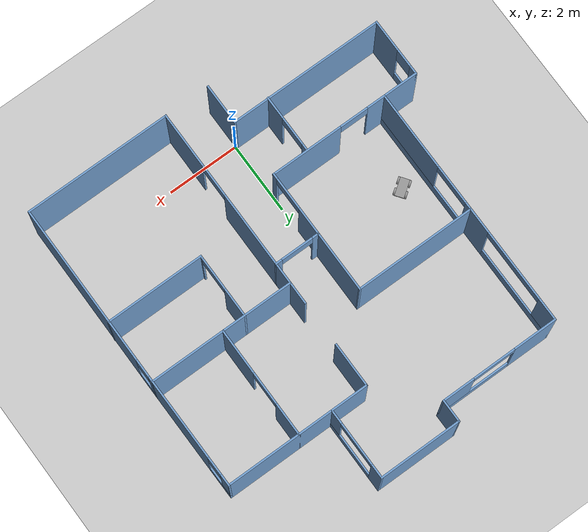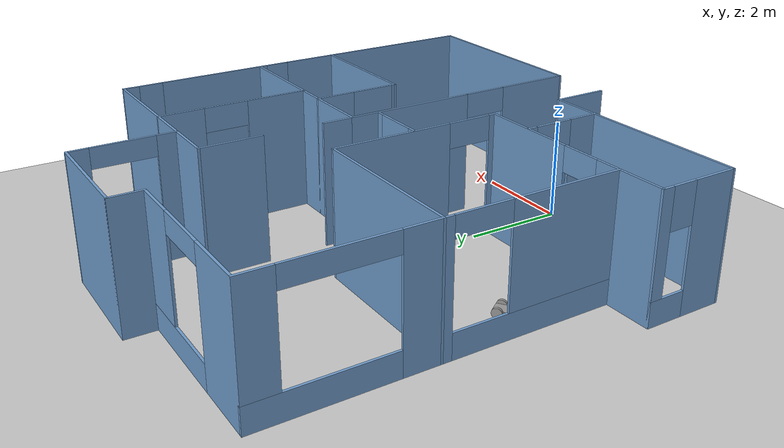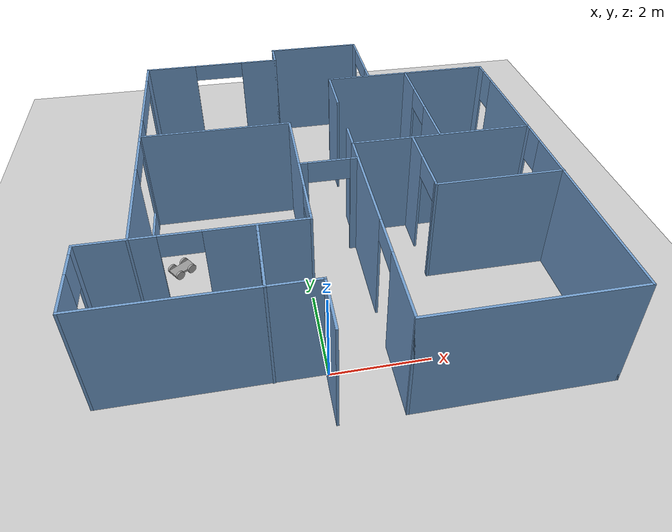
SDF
<sdf version="1.6">
 <world name="default">
  <model name="ground_plane">
   <static>1</static>
   <link name="link">
    <collision name="collision">
     <geometry><plane><normal>0 0 1</normal><size>100 100</size></plane></geometry>
     <surface>
      <contact><collide_bitmask>65535</collide_bitmask></contact>
      <friction><ode><mu>100</mu><mu2>50</mu2></ode></friction>
     </surface>
    </collision>
    <visual name="visual">
     <cast_shadows>0</cast_shadows>
     <geometry><plane><normal>0 0 1</normal><size>100 100</size></plane></geometry>
     <material>
      <script><uri>file://media/materials/scripts/gazebo.material</uri><name>Gazebo/Grey</name></script>
     </material>
    </visual>
   </link>
  </model>
  <model name="T8_1160">
   <pose>0.49359 3.97815 0 0 -0 0</pose>
   <link name="Wall_0">
    <collision name="Wall_0_Collision">
     <geometry><box><size>4.31 0.05 2.5</size></box></geometry>
     <pose>0 0 1.25 0 -0 0</pose>
    </collision>
    <visual name="Wall_0_Visual">
     <pose>0 0 1.25 0 -0 0</pose>
     <geometry><box><size>4.31 0.05 2.5</size></box></geometry>
     <material>
      <script><uri>file://media/materials/scripts/gazebo.material</uri><name>Gazebo/Grey</name></script>
      <ambient>0.447059 0.623529 0.811765 1</ambient>
     </material>
     <meta><layer>0</layer></meta>
    </visual>
    <pose>-2.645 -3.94713 0 0 -0 3.14159</pose>
   </link>
   <link name="Wall_11">
    <collision name="Wall_11_Collision">
     <geometry><box><size>3.35552 0.05 2.5</size></box></geometry>
     <pose>0 0 1.25 0 -0 0</pose>
    </collision>
    <visual name="Wall_11_Visual">
     <pose>0 0 1.25 0 -0 0</pose>
     <geometry><box><size>3.35552 0.05 2.5</size></box></geometry>
     <material>
      <script><uri>file://media/materials/scripts/gazebo.material</uri><name>Gazebo/Grey</name></script>
      <ambient>0.447059 0.623529 0.811765 1</ambient>
     </material>
     <meta><layer>0</layer></meta>
    </visual>
    <pose>-2.1675 1.12987 0 0 -0 3.14159</pose>
   </link>
   <link name="Wall_14">
    <pose>-3.82 -0.608633 0 0 -0 -1.5708</pose>
    <visual name="Wall_14_Visual_0">
     <pose>-1.65666 0 1.25 0 -0 0</pose>
     <geometry><box><size>0.213672 0.05 2.5</size></box></geometry>
     <material>
      <script><uri>file://media/materials/scripts/gazebo.material</uri><name>Gazebo/Grey</name></script>
      <ambient>0.447059 0.623529 0.811765 1</ambient>
     </material>
     <meta><layer>0</layer></meta>
    </visual>
    <collision name="Wall_14_Collision_0">
     <geometry><box><size>0.213672 0.05 2.5</size></box></geometry>
     <pose>-1.65666 0 1.25 0 -0 0</pose>
    </collision>
    <visual name="Wall_14_Visual_1">
     <pose>0.106836 0 0.25 0 -0 0</pose>
     <geometry><box><size>3.31333 0.05 0.5</size></box></geometry>
     <material>
      <script><uri>file://media/materials/scripts/gazebo.material</uri><name>Gazebo/Grey</name></script>
      <ambient>0.447059 0.623529 0.811765 1</ambient>
     </material>
     <meta><layer>0</layer></meta>
    </visual>
    <collision name="Wall_14_Collision_1">
     <geometry><box><size>3.31333 0.05 0.5</size></box></geometry>
     <pose>0.106836 0 0.25 0 -0 0</pose>
    </collision>
    <visual name="Wall_14_Visual_2">
     <pose>0.656836 0 1.5 0 -0 0</pose>
     <geometry><box><size>2.21333 0.05 2</size></box></geometry>
     <material>
      <script><uri>file://media/materials/scripts/gazebo.material</uri><name>Gazebo/Grey</name></script>
      <ambient>0.447059 0.623529 0.811765 1</ambient>
     </material>
     <meta><layer>0</layer></meta>
    </visual>
    <collision name="Wall_14_Collision_2">
     <geometry><box><size>2.21333 0.05 2</size></box></geometry>
     <pose>0.656836 0 1.5 0 -0 0</pose>
    </collision>
    <visual name="Wall_14_Visual_3">
     <pose>-0.999828 0 2.3 0 -0 0</pose>
     <geometry><box><size>1.1 0.05 0.4</size></box></geometry>
     <material>
      <script><uri>file://media/materials/scripts/gazebo.material</uri><name>Gazebo/Grey</name></script>
      <ambient>0.447059 0.623529 0.811765 1</ambient>
     </material>
     <meta><layer>0</layer></meta>
    </visual>
    <collision name="Wall_14_Collision_3">
     <geometry><box><size>1.1 0.05 0.4</size></box></geometry>
     <pose>-0.999828 0 2.3 0 -0 0</pose>
    </collision>
   </link>
   <link name="Wall_16">
    <collision name="Wall_16_Collision">
     <geometry><box><size>1.15 0.05 2.5</size></box></geometry>
     <pose>0 0 1.25 0 -0 0</pose>
    </collision>
    <visual name="Wall_16_Visual">
     <pose>0 0 1.25 0 -0 0</pose>
     <geometry><box><size>1.15 0.05 2.5</size></box></geometry>
     <material>
      <script><uri>file://media/materials/scripts/gazebo.material</uri><name>Gazebo/Grey</name></script>
      <ambient>0.447059 0.623529 0.811765 1</ambient>
     </material>
     <meta><layer>0</layer></meta>
    </visual>
    <pose>-0.515 -4.49713 0 0 -0 -1.5708</pose>
   </link>
   <link name="Wall_18">
    <pose>0.735 -2.51163 0 0 -0 1.5708</pose>
    <visual name="Wall_18_Visual_0">
     <pose>-1.78983 0 1.25 0 -0 0</pose>
     <geometry><box><size>1.56134 0.05 2.5</size></box></geometry>
     <material>
      <script><uri>file://media/materials/scripts/gazebo.material</uri><name>Gazebo/Grey</name></script>
      <ambient>0.447059 0.623529 0.811765 1</ambient>
     </material>
     <meta><layer>0</layer></meta>
    </visual>
    <collision name="Wall_18_Collision_0">
     <geometry><box><size>1.56134 0.05 2.5</size></box></geometry>
     <pose>-1.78983 0 1.25 0 -0 0</pose>
    </collision>
    <visual name="Wall_18_Visual_1">
     <pose>1.23067 0 1.25 0 -0 0</pose>
     <geometry><box><size>2.67966 0.05 2.5</size></box></geometry>
     <material>
      <script><uri>file://media/materials/scripts/gazebo.material</uri><name>Gazebo/Grey</name></script>
      <ambient>0.447059 0.623529 0.811765 1</ambient>
     </material>
     <meta><layer>0</layer></meta>
    </visual>
    <collision name="Wall_18_Collision_1">
     <geometry><box><size>2.67966 0.05 2.5</size></box></geometry>
     <pose>1.23067 0 1.25 0 -0 0</pose>
    </collision>
    <visual name="Wall_18_Visual_2">
     <pose>-0.559159 0 2.25 0 -0 0</pose>
     <geometry><box><size>0.9 0.05 0.5</size></box></geometry>
     <material>
      <script><uri>file://media/materials/scripts/gazebo.material</uri><name>Gazebo/Grey</name></script>
      <ambient>0.447059 0.623529 0.811765 1</ambient>
     </material>
     <meta><layer>0</layer></meta>
    </visual>
    <collision name="Wall_18_Collision_2">
     <geometry><box><size>0.9 0.05 0.5</size></box></geometry>
     <pose>-0.559159 0 2.25 0 -0 0</pose>
    </collision>
   </link>
   <link name="Wall_2">
    <pose>-4.775 -3.14713 0 0 -0 1.5708</pose>
    <visual name="Wall_2_Visual_0">
     <pose>-0.375725 0 1.25 0 -0 0</pose>
     <geometry><box><size>0.89855 0.05 2.5</size></box></geometry>
     <material>
      <script><uri>file://media/materials/scripts/gazebo.material</uri><name>Gazebo/Grey</name></script>
      <ambient>0.447059 0.623529 0.811765 1</ambient>
     </material>
     <meta><layer>0</layer></meta>
    </visual>
    <collision name="Wall_2_Collision_0">
     <geometry><box><size>0.89855 0.05 2.5</size></box></geometry>
     <pose>-0.375725 0 1.25 0 -0 0</pose>
    </collision>
    <visual name="Wall_2_Visual_1">
     <pose>0.449275 0 0.25 0 -0 0</pose>
     <geometry><box><size>0.75145 0.05 0.5</size></box></geometry>
     <material>
      <script><uri>file://media/materials/scripts/gazebo.material</uri><name>Gazebo/Grey</name></script>
      <ambient>0.447059 0.623529 0.811765 1</ambient>
     </material>
     <meta><layer>0</layer></meta>
    </visual>
    <collision name="Wall_2_Collision_1">
     <geometry><box><size>0.75145 0.05 0.5</size></box></geometry>
     <pose>0.449275 0 0.25 0 -0 0</pose>
    </collision>
    <visual name="Wall_2_Visual_2">
     <pose>0.699275 0 1.5 0 -0 0</pose>
     <geometry><box><size>0.25145 0.05 2</size></box></geometry>
     <material>
      <script><uri>file://media/materials/scripts/gazebo.material</uri><name>Gazebo/Grey</name></script>
      <ambient>0.447059 0.623529 0.811765 1</ambient>
     </material>
     <meta><layer>0</layer></meta>
    </visual>
    <collision name="Wall_2_Collision_2">
     <geometry><box><size>0.25145 0.05 2</size></box></geometry>
     <pose>0.699275 0 1.5 0 -0 0</pose>
    </collision>
    <visual name="Wall_2_Visual_3">
     <pose>0.32355 0 2.1 0 -0 0</pose>
     <geometry><box><size>0.5 0.05 0.8</size></box></geometry>
     <material>
      <script><uri>file://media/materials/scripts/gazebo.material</uri><name>Gazebo/Grey</name></script>
      <ambient>0.447059 0.623529 0.811765 1</ambient>
     </material>
     <meta><layer>0</layer></meta>
    </visual>
    <collision name="Wall_2_Collision_3">
     <geometry><box><size>0.5 0.05 0.8</size></box></geometry>
     <pose>0.32355 0 2.1 0 -0 0</pose>
    </collision>
   </link>
   <link name="Wall_20">
    <collision name="Wall_20_Collision">
     <geometry><box><size>4.08 0.05 2.5</size></box></geometry>
     <pose>0 0 1.25 0 -0 0</pose>
    </collision>
    <visual name="Wall_20_Visual">
     <pose>0 0 1.25 0 -0 0</pose>
     <geometry><box><size>4.08 0.05 2.5</size></box></geometry>
     <material>
      <script><uri>file://media/materials/scripts/gazebo.material</uri><name>Gazebo/Grey</name></script>
      <ambient>0.447059 0.623529 0.811765 1</ambient>
     </material>
     <meta><layer>0</layer></meta>
    </visual>
    <pose>2.75 -5.05713 0 0 -0 0</pose>
   </link>
   <link name="Wall_22">
    <pose>4.765 -2.51163 0 0 -0 1.5708</pose>
    <visual name="Wall_22_Visual_0">
     <pose>-0.335589 0 1.25 0 -0 0</pose>
     <geometry><box><size>4.46982 0.05 2.5</size></box></geometry>
     <material>
      <script><uri>file://media/materials/scripts/gazebo.material</uri><name>Gazebo/Grey</name></script>
      <ambient>0.447059 0.623529 0.811765 1</ambient>
     </material>
     <meta><layer>0</layer></meta>
    </visual>
    <collision name="Wall_22_Collision_0">
     <geometry><box><size>4.46982 0.05 2.5</size></box></geometry>
     <pose>-0.335589 0 1.25 0 -0 0</pose>
    </collision>
    <visual name="Wall_22_Visual_1">
     <pose>2.23491 0 0.25 0 -0 0</pose>
     <geometry><box><size>0.671178 0.05 0.5</size></box></geometry>
     <material>
      <script><uri>file://media/materials/scripts/gazebo.material</uri><name>Gazebo/Grey</name></script>
      <ambient>0.447059 0.623529 0.811765 1</ambient>
     </material>
     <meta><layer>0</layer></meta>
    </visual>
    <collision name="Wall_22_Collision_1">
     <geometry><box><size>0.671178 0.05 0.5</size></box></geometry>
     <pose>2.23491 0 0.25 0 -0 0</pose>
    </collision>
    <visual name="Wall_22_Visual_2">
     <pose>2.48491 0 1.5 0 -0 0</pose>
     <geometry><box><size>0.171178 0.05 2</size></box></geometry>
     <material>
      <script><uri>file://media/materials/scripts/gazebo.material</uri><name>Gazebo/Grey</name></script>
      <ambient>0.447059 0.623529 0.811765 1</ambient>
     </material>
     <meta><layer>0</layer></meta>
    </visual>
    <collision name="Wall_22_Collision_2">
     <geometry><box><size>0.171178 0.05 2</size></box></geometry>
     <pose>2.48491 0 1.5 0 -0 0</pose>
    </collision>
    <visual name="Wall_22_Visual_3">
     <pose>2.14932 0 2.1 0 -0 0</pose>
     <geometry><box><size>0.5 0.05 0.8</size></box></geometry>
     <material>
      <script><uri>file://media/materials/scripts/gazebo.material</uri><name>Gazebo/Grey</name></script>
      <ambient>0.447059 0.623529 0.811765 1</ambient>
     </material>
     <meta><layer>0</layer></meta>
    </visual>
    <collision name="Wall_22_Collision_3">
     <geometry><box><size>0.5 0.05 0.8</size></box></geometry>
     <pose>2.14932 0 2.1 0 -0 0</pose>
    </collision>
   </link>
   <link name="Wall_24">
    <collision name="Wall_24_Collision">
     <geometry><box><size>4.08 0.05 2.5</size></box></geometry>
     <pose>0 0 1.25 0 -0 0</pose>
    </collision>
    <visual name="Wall_24_Visual">
     <pose>0 0 1.25 0 -0 0</pose>
     <geometry><box><size>4.08 0.05 2.5</size></box></geometry>
     <material>
      <script><uri>file://media/materials/scripts/gazebo.material</uri><name>Gazebo/Grey</name></script>
      <ambient>0.447059 0.623529 0.811765 1</ambient>
     </material>
     <meta><layer>0</layer></meta>
    </visual>
    <pose>2.75 0.033867 0 0 -0 0</pose>
   </link>
   <link name="Wall_27">
    <pose>0.1145 -0.539133 0 0 -0 0</pose>
    <visual name="Wall_27_Visual_0">
     <pose>-0.547154 0 1.25 0 -0 0</pose>
     <geometry><box><size>0.196693 0.05 2.5</size></box></geometry>
     <material>
      <script><uri>file://media/materials/scripts/gazebo.material</uri><name>Gazebo/Grey</name></script>
      <ambient>0.447059 0.623529 0.811765 1</ambient>
     </material>
     <meta><layer>0</layer></meta>
    </visual>
    <collision name="Wall_27_Collision_0">
     <geometry><box><size>0.196693 0.05 2.5</size></box></geometry>
     <pose>-0.547154 0 1.25 0 -0 0</pose>
    </collision>
    <visual name="Wall_27_Visual_1">
     <pose>0.548346 0 1.25 0 -0 0</pose>
     <geometry><box><size>0.194307 0.05 2.5</size></box></geometry>
     <material>
      <script><uri>file://media/materials/scripts/gazebo.material</uri><name>Gazebo/Grey</name></script>
      <ambient>0.447059 0.623529 0.811765 1</ambient>
     </material>
     <meta><layer>0</layer></meta>
    </visual>
    <collision name="Wall_27_Collision_1">
     <geometry><box><size>0.194307 0.05 2.5</size></box></geometry>
     <pose>0.548346 0 1.25 0 -0 0</pose>
    </collision>
    <visual name="Wall_27_Visual_2">
     <pose>0.001193 0 2.25 0 -0 0</pose>
     <geometry><box><size>0.9 0.05 0.5</size></box></geometry>
     <material>
      <script><uri>file://media/materials/scripts/gazebo.material</uri><name>Gazebo/Grey</name></script>
      <ambient>0.447059 0.623529 0.811765 1</ambient>
     </material>
     <meta><layer>0</layer></meta>
    </visual>
    <collision name="Wall_27_Collision_2">
     <geometry><box><size>0.9 0.05 0.5</size></box></geometry>
     <pose>0.001193 0 2.25 0 -0 0</pose>
    </collision>
   </link>
   <link name="Wall_29">
    <collision name="Wall_29_Collision">
     <geometry><box><size>0.65 0.05 2.5</size></box></geometry>
     <pose>0 0 1.25 0 -0 0</pose>
    </collision>
    <visual name="Wall_29_Visual">
     <pose>0 0 1.25 0 -0 0</pose>
     <geometry><box><size>0.65 0.05 2.5</size></box></geometry>
     <material>
      <script><uri>file://media/materials/scripts/gazebo.material</uri><name>Gazebo/Grey</name></script>
      <ambient>0.447059 0.623529 0.811765 1</ambient>
     </material>
     <meta><layer>0</layer></meta>
    </visual>
    <pose>0.735 0.333867 0 0 -0 1.5708</pose>
   </link>
   <link name="Wall_31">
    <collision name="Wall_31_Collision">
     <geometry><box><size>2.75 0.05 2.5</size></box></geometry>
     <pose>0 0 1.25 0 -0 0</pose>
    </collision>
    <visual name="Wall_31_Visual">
     <pose>0 0 1.25 0 -0 0</pose>
     <geometry><box><size>2.75 0.05 2.5</size></box></geometry>
     <material>
      <script><uri>file://media/materials/scripts/gazebo.material</uri><name>Gazebo/Grey</name></script>
      <ambient>0.447059 0.623529 0.811765 1</ambient>
     </material>
     <meta><layer>0</layer></meta>
    </visual>
    <pose>3.425 -1.74713 0 0 -0 3.14159</pose>
   </link>
   <link name="Wall_33">
    <pose>2.075 -0.856633 0 0 -0 1.5708</pose>
    <visual name="Wall_33_Visual_0">
     <pose>-0.861434 0 1.25 0 -0 0</pose>
     <geometry><box><size>0.108132 0.05 2.5</size></box></geometry>
     <material>
      <script><uri>file://media/materials/scripts/gazebo.material</uri><name>Gazebo/Grey</name></script>
      <ambient>0.447059 0.623529 0.811765 1</ambient>
     </material>
     <meta><layer>0</layer></meta>
    </visual>
    <collision name="Wall_33_Collision_0">
     <geometry><box><size>0.108132 0.05 2.5</size></box></geometry>
     <pose>-0.861434 0 1.25 0 -0 0</pose>
    </collision>
    <visual name="Wall_33_Visual_1">
     <pose>0.504066 0 1.25 0 -0 0</pose>
     <geometry><box><size>0.822868 0.05 2.5</size></box></geometry>
     <material>
      <script><uri>file://media/materials/scripts/gazebo.material</uri><name>Gazebo/Grey</name></script>
      <ambient>0.447059 0.623529 0.811765 1</ambient>
     </material>
     <meta><layer>0</layer></meta>
    </visual>
    <collision name="Wall_33_Collision_1">
     <geometry><box><size>0.822868 0.05 2.5</size></box></geometry>
     <pose>0.504066 0 1.25 0 -0 0</pose>
    </collision>
    <visual name="Wall_33_Visual_2">
     <pose>-0.357368 0 2.25 0 -0 0</pose>
     <geometry><box><size>0.9 0.05 0.5</size></box></geometry>
     <material>
      <script><uri>file://media/materials/scripts/gazebo.material</uri><name>Gazebo/Grey</name></script>
      <ambient>0.447059 0.623529 0.811765 1</ambient>
     </material>
     <meta><layer>0</layer></meta>
    </visual>
    <collision name="Wall_33_Collision_2">
     <geometry><box><size>0.9 0.05 0.5</size></box></geometry>
     <pose>-0.357368 0 2.25 0 -0 0</pose>
    </collision>
   </link>
   <link name="Wall_35">
    <pose>-3.82 2.79337 0 0 -0 1.5708</pose>
    <visual name="Wall_35_Visual_0">
     <pose>-1.32132 0 1.25 0 -0 0</pose>
     <geometry><box><size>0.734362 0.05 2.5</size></box></geometry>
     <material>
      <script><uri>file://media/materials/scripts/gazebo.material</uri><name>Gazebo/Grey</name></script>
      <ambient>0.447059 0.623529 0.811765 1</ambient>
     </material>
     <meta><layer>0</layer></meta>
    </visual>
    <collision name="Wall_35_Collision_0">
     <geometry><box><size>0.734362 0.05 2.5</size></box></geometry>
     <pose>-1.32132 0 1.25 0 -0 0</pose>
    </collision>
    <visual name="Wall_35_Visual_1">
     <pose>0.367181 0 0.25 0 -0 0</pose>
     <geometry><box><size>2.64264 0.05 0.5</size></box></geometry>
     <material>
      <script><uri>file://media/materials/scripts/gazebo.material</uri><name>Gazebo/Grey</name></script>
      <ambient>0.447059 0.623529 0.811765 1</ambient>
     </material>
     <meta><layer>0</layer></meta>
    </visual>
    <collision name="Wall_35_Collision_1">
     <geometry><box><size>2.64264 0.05 0.5</size></box></geometry>
     <pose>0.367181 0 0.25 0 -0 0</pose>
    </collision>
    <visual name="Wall_35_Visual_2">
     <pose>1.36718 0 1.5 0 -0 0</pose>
     <geometry><box><size>0.642638 0.05 2</size></box></geometry>
     <material>
      <script><uri>file://media/materials/scripts/gazebo.material</uri><name>Gazebo/Grey</name></script>
      <ambient>0.447059 0.623529 0.811765 1</ambient>
     </material>
     <meta><layer>0</layer></meta>
    </visual>
    <collision name="Wall_35_Collision_2">
     <geometry><box><size>0.642638 0.05 2</size></box></geometry>
     <pose>1.36718 0 1.5 0 -0 0</pose>
    </collision>
    <visual name="Wall_35_Visual_3">
     <pose>0.045862 0 2.3 0 -0 0</pose>
     <geometry><box><size>2 0.05 0.4</size></box></geometry>
     <material>
      <script><uri>file://media/materials/scripts/gazebo.material</uri><name>Gazebo/Grey</name></script>
      <ambient>0.447059 0.623529 0.811765 1</ambient>
     </material>
     <meta><layer>0</layer></meta>
    </visual>
    <collision name="Wall_35_Collision_3">
     <geometry><box><size>2 0.05 0.4</size></box></geometry>
     <pose>0.045862 0 2.3 0 -0 0</pose>
    </collision>
   </link>
   <link name="Wall_37">
    <pose>-2.1675 4.45687 0 0 -0 0</pose>
    <visual name="Wall_37_Visual_0">
     <pose>-1.06148 0 1.25 0 -0 0</pose>
     <geometry><box><size>1.23203 0.05 2.5</size></box></geometry>
     <material>
      <script><uri>file://media/materials/scripts/gazebo.material</uri><name>Gazebo/Grey</name></script>
      <ambient>0.447059 0.623529 0.811765 1</ambient>
     </material>
     <meta><layer>0</layer></meta>
    </visual>
    <collision name="Wall_37_Collision_0">
     <geometry><box><size>1.23203 0.05 2.5</size></box></geometry>
     <pose>-1.06148 0 1.25 0 -0 0</pose>
    </collision>
    <visual name="Wall_37_Visual_1">
     <pose>0.616016 0 0.25 0 -0 0</pose>
     <geometry><box><size>2.12297 0.05 0.5</size></box></geometry>
     <material>
      <script><uri>file://media/materials/scripts/gazebo.material</uri><name>Gazebo/Grey</name></script>
      <ambient>0.447059 0.623529 0.811765 1</ambient>
     </material>
     <meta><layer>0</layer></meta>
    </visual>
    <collision name="Wall_37_Collision_1">
     <geometry><box><size>2.12297 0.05 0.5</size></box></geometry>
     <pose>0.616016 0 0.25 0 -0 0</pose>
    </collision>
    <visual name="Wall_37_Visual_2">
     <pose>1.21602 0 1.5 0 -0 0</pose>
     <geometry><box><size>0.922968 0.05 2</size></box></geometry>
     <material>
      <script><uri>file://media/materials/scripts/gazebo.material</uri><name>Gazebo/Grey</name></script>
      <ambient>0.447059 0.623529 0.811765 1</ambient>
     </material>
     <meta><layer>0</layer></meta>
    </visual>
    <collision name="Wall_37_Collision_2">
     <geometry><box><size>0.922968 0.05 2</size></box></geometry>
     <pose>1.21602 0 1.5 0 -0 0</pose>
    </collision>
    <visual name="Wall_37_Visual_3">
     <pose>0.154532 0 2.3 0 -0 0</pose>
     <geometry><box><size>1.2 0.05 0.4</size></box></geometry>
     <material>
      <script><uri>file://media/materials/scripts/gazebo.material</uri><name>Gazebo/Grey</name></script>
      <ambient>0.447059 0.623529 0.811765 1</ambient>
     </material>
     <meta><layer>0</layer></meta>
    </visual>
    <collision name="Wall_37_Collision_3">
     <geometry><box><size>1.2 0.05 0.4</size></box></geometry>
     <pose>0.154532 0 2.3 0 -0 0</pose>
    </collision>
   </link>
   <link name="Wall_39">
    <pose>4.755 1.56037 0 0 -0 1.57735</pose>
    <visual name="Wall_39_Visual_0">
     <pose>-0.419155 0 1.25 0 -0 0</pose>
     <geometry><box><size>2.26536 0.05 2.5</size></box></geometry>
     <material>
      <script><uri>file://media/materials/scripts/gazebo.material</uri><name>Gazebo/Grey</name></script>
      <ambient>0.447059 0.623529 0.811765 1</ambient>
     </material>
     <meta><layer>0</layer></meta>
    </visual>
    <collision name="Wall_39_Collision_0">
     <geometry><box><size>2.26536 0.05 2.5</size></box></geometry>
     <pose>-0.419155 0 1.25 0 -0 0</pose>
    </collision>
    <visual name="Wall_39_Visual_1">
     <pose>1.13268 0 0.25 0 -0 0</pose>
     <geometry><box><size>0.838311 0.05 0.5</size></box></geometry>
     <material>
      <script><uri>file://media/materials/scripts/gazebo.material</uri><name>Gazebo/Grey</name></script>
      <ambient>0.447059 0.623529 0.811765 1</ambient>
     </material>
     <meta><layer>0</layer></meta>
    </visual>
    <collision name="Wall_39_Collision_1">
     <geometry><box><size>0.838311 0.05 0.5</size></box></geometry>
     <pose>1.13268 0 0.25 0 -0 0</pose>
    </collision>
    <visual name="Wall_39_Visual_2">
     <pose>1.38268 0 1.5 0 -0 0</pose>
     <geometry><box><size>0.338311 0.05 2</size></box></geometry>
     <material>
      <script><uri>file://media/materials/scripts/gazebo.material</uri><name>Gazebo/Grey</name></script>
      <ambient>0.447059 0.623529 0.811765 1</ambient>
     </material>
     <meta><layer>0</layer></meta>
    </visual>
    <collision name="Wall_39_Collision_2">
     <geometry><box><size>0.338311 0.05 2</size></box></geometry>
     <pose>1.38268 0 1.5 0 -0 0</pose>
    </collision>
    <visual name="Wall_39_Visual_3">
     <pose>0.963525 0 2.1 0 -0 0</pose>
     <geometry><box><size>0.5 0.05 0.8</size></box></geometry>
     <material>
      <script><uri>file://media/materials/scripts/gazebo.material</uri><name>Gazebo/Grey</name></script>
      <ambient>0.447059 0.623529 0.811765 1</ambient>
     </material>
     <meta><layer>0</layer></meta>
    </visual>
    <collision name="Wall_39_Collision_3">
     <geometry><box><size>0.5 0.05 0.8</size></box></geometry>
     <pose>0.963525 0 2.1 0 -0 0</pose>
    </collision>
   </link>
   <link name="Wall_4">
    <pose>-2.645 -2.34713 0 0 -0 0</pose>
    <visual name="Wall_4_Visual_0">
     <pose>-1.40931 0 1.25 0 -0 0</pose>
     <geometry><box><size>1.49138 0.05 2.5</size></box></geometry>
     <material>
      <script><uri>file://media/materials/scripts/gazebo.material</uri><name>Gazebo/Grey</name></script>
      <ambient>0.447059 0.623529 0.811765 1</ambient>
     </material>
     <meta><layer>0</layer></meta>
    </visual>
    <collision name="Wall_4_Collision_0">
     <geometry><box><size>1.49138 0.05 2.5</size></box></geometry>
     <pose>-1.40931 0 1.25 0 -0 0</pose>
    </collision>
    <visual name="Wall_4_Visual_1">
     <pose>1.14569 0 1.25 0 -0 0</pose>
     <geometry><box><size>2.01862 0.05 2.5</size></box></geometry>
     <material>
      <script><uri>file://media/materials/scripts/gazebo.material</uri><name>Gazebo/Grey</name></script>
      <ambient>0.447059 0.623529 0.811765 1</ambient>
     </material>
     <meta><layer>0</layer></meta>
    </visual>
    <collision name="Wall_4_Collision_1">
     <geometry><box><size>2.01862 0.05 2.5</size></box></geometry>
     <pose>1.14569 0 1.25 0 -0 0</pose>
    </collision>
    <visual name="Wall_4_Visual_2">
     <pose>-0.263615 0 2.25 0 -0 0</pose>
     <geometry><box><size>0.8 0.05 0.5</size></box></geometry>
     <material>
      <script><uri>file://media/materials/scripts/gazebo.material</uri><name>Gazebo/Grey</name></script>
      <ambient>0.447059 0.623529 0.811765 1</ambient>
     </material>
     <meta><layer>0</layer></meta>
    </visual>
    <collision name="Wall_4_Collision_2">
     <geometry><box><size>0.8 0.05 0.5</size></box></geometry>
     <pose>-0.263615 0 2.25 0 -0 0</pose>
    </collision>
   </link>
   <link name="Wall_41">
    <collision name="Wall_41_Collision">
     <geometry><box><size>4.06 0.05 2.5</size></box></geometry>
     <pose>0 0 1.25 0 -0 0</pose>
    </collision>
    <visual name="Wall_41_Visual">
     <pose>0 0 1.25 0 -0 0</pose>
     <geometry><box><size>4.06 0.05 2.5</size></box></geometry>
     <material>
      <script><uri>file://media/materials/scripts/gazebo.material</uri><name>Gazebo/Grey</name></script>
      <ambient>0.447059 0.623529 0.811765 1</ambient>
     </material>
     <meta><layer>0</layer></meta>
    </visual>
    <pose>2.74 3.08687 0 0 -0 3.14159</pose>
   </link>
   <link name="Wall_43">
    <collision name="Wall_43_Collision">
     <geometry><box><size>1.253 0.05 2.5</size></box></geometry>
     <pose>0 0 1.25 0 -0 0</pose>
    </collision>
    <visual name="Wall_43_Visual">
     <pose>0 0 1.25 0 -0 0</pose>
     <geometry><box><size>1.253 0.05 2.5</size></box></geometry>
     <material>
      <script><uri>file://media/materials/scripts/gazebo.material</uri><name>Gazebo/Grey</name></script>
      <ambient>0.447059 0.623529 0.811765 1</ambient>
     </material>
     <meta><layer>0</layer></meta>
    </visual>
    <pose>0.735 2.48537 0 0 -0 -1.5708</pose>
   </link>
   <link name="Wall_45">
    <pose>2.711 1.56037 0 0 -0 -1.5708</pose>
    <visual name="Wall_45_Visual_0">
     <pose>-1.0853 0 1.25 0 -0 0</pose>
     <geometry><box><size>0.9324 0.05 2.5</size></box></geometry>
     <material>
      <script><uri>file://media/materials/scripts/gazebo.material</uri><name>Gazebo/Grey</name></script>
      <ambient>0.447059 0.623529 0.811765 1</ambient>
     </material>
     <meta><layer>0</layer></meta>
    </visual>
    <collision name="Wall_45_Collision_0">
     <geometry><box><size>0.9324 0.05 2.5</size></box></geometry>
     <pose>-1.0853 0 1.25 0 -0 0</pose>
    </collision>
    <visual name="Wall_45_Visual_1">
     <pose>0.9162 0 1.25 0 -0 0</pose>
     <geometry><box><size>1.2706 0.05 2.5</size></box></geometry>
     <material>
      <script><uri>file://media/materials/scripts/gazebo.material</uri><name>Gazebo/Grey</name></script>
      <ambient>0.447059 0.623529 0.811765 1</ambient>
     </material>
     <meta><layer>0</layer></meta>
    </visual>
    <collision name="Wall_45_Collision_1">
     <geometry><box><size>1.2706 0.05 2.5</size></box></geometry>
     <pose>0.9162 0 1.25 0 -0 0</pose>
    </collision>
    <visual name="Wall_45_Visual_2">
     <pose>-0.1691 0 2.25 0 -0 0</pose>
     <geometry><box><size>0.9 0.05 0.5</size></box></geometry>
     <material>
      <script><uri>file://media/materials/scripts/gazebo.material</uri><name>Gazebo/Grey</name></script>
      <ambient>0.447059 0.623529 0.811765 1</ambient>
     </material>
     <meta><layer>0</layer></meta>
    </visual>
    <collision name="Wall_45_Collision_2">
     <geometry><box><size>0.9 0.05 0.5</size></box></geometry>
     <pose>-0.1691 0 2.25 0 -0 0</pose>
    </collision>
   </link>
   <link name="Wall_47">
    <collision name="Wall_47_Collision">
     <geometry><box><size>0.65 0.05 2.5</size></box></geometry>
     <pose>0 0 1.25 0 -0 0</pose>
    </collision>
    <visual name="Wall_47_Visual">
     <pose>0 0 1.25 0 -0 0</pose>
     <geometry><box><size>0.65 0.05 2.5</size></box></geometry>
     <material>
      <script><uri>file://media/materials/scripts/gazebo.material</uri><name>Gazebo/Grey</name></script>
      <ambient>0.447059 0.623529 0.811765 1</ambient>
     </material>
     <meta><layer>0</layer></meta>
    </visual>
    <pose>-0.515 4.75687 0 0 -0 1.5708</pose>
   </link>
   <link name="Wall_48">
    <collision name="Wall_48_Collision">
     <geometry><box><size>2.31494 0.05 2.5</size></box></geometry>
     <pose>0 0 1.25 0 -0 0</pose>
    </collision>
    <visual name="Wall_48_Visual">
     <pose>0 0 1.25 0 -0 0</pose>
     <geometry><box><size>2.31494 0.05 2.5</size></box></geometry>
     <material>
      <script><uri>file://media/materials/scripts/gazebo.material</uri><name>Gazebo/Grey</name></script>
      <ambient>0.447059 0.623529 0.811765 1</ambient>
     </material>
     <meta><layer>0</layer></meta>
    </visual>
    <pose>0.6175 5.05687 0 0 -0 0</pose>
   </link>
   <link name="Wall_49">
    <pose>1.75 4.07787 0 0 -0 -1.5708</pose>
    <visual name="Wall_49_Visual_0">
     <pose>-0.800206 0 1.25 0 -0 0</pose>
     <geometry><box><size>0.408123 0.05 2.5</size></box></geometry>
     <material>
      <script><uri>file://media/materials/scripts/gazebo.material</uri><name>Gazebo/Grey</name></script>
      <ambient>0.447059 0.623529 0.811765 1</ambient>
     </material>
     <meta><layer>0</layer></meta>
    </visual>
    <collision name="Wall_49_Collision_0">
     <geometry><box><size>0.408123 0.05 2.5</size></box></geometry>
     <pose>-0.800206 0 1.25 0 -0 0</pose>
    </collision>
    <visual name="Wall_49_Visual_1">
     <pose>0.204061 0 0.25 0 -0 0</pose>
     <geometry><box><size>1.60041 0.05 0.5</size></box></geometry>
     <material>
      <script><uri>file://media/materials/scripts/gazebo.material</uri><name>Gazebo/Grey</name></script>
      <ambient>0.447059 0.623529 0.811765 1</ambient>
     </material>
     <meta><layer>0</layer></meta>
    </visual>
    <collision name="Wall_49_Collision_1">
     <geometry><box><size>1.60041 0.05 0.5</size></box></geometry>
     <pose>0.204061 0 0.25 0 -0 0</pose>
    </collision>
    <visual name="Wall_49_Visual_2">
     <pose>0.804061 0 1.5 0 -0 0</pose>
     <geometry><box><size>0.400411 0.05 2</size></box></geometry>
     <material>
      <script><uri>file://media/materials/scripts/gazebo.material</uri><name>Gazebo/Grey</name></script>
      <ambient>0.447059 0.623529 0.811765 1</ambient>
     </material>
     <meta><layer>0</layer></meta>
    </visual>
    <collision name="Wall_49_Collision_2">
     <geometry><box><size>0.400411 0.05 2</size></box></geometry>
     <pose>0.804061 0 1.5 0 -0 0</pose>
    </collision>
    <visual name="Wall_49_Visual_3">
     <pose>0.003856 0 2.3 0 -0 0</pose>
     <geometry><box><size>1.2 0.05 0.4</size></box></geometry>
     <material>
      <script><uri>file://media/materials/scripts/gazebo.material</uri><name>Gazebo/Grey</name></script>
      <ambient>0.447059 0.623529 0.811765 1</ambient>
     </material>
     <meta><layer>0</layer></meta>
    </visual>
    <collision name="Wall_49_Collision_3">
     <geometry><box><size>1.2 0.05 0.4</size></box></geometry>
     <pose>0.003856 0 2.3 0 -0 0</pose>
    </collision>
   </link>
   <link name="Wall_7">
    <pose>-1.515 -3.16113 0 0 -0 -1.5708</pose>
    <visual name="Wall_7_Visual_0">
     <pose>-0.720934 0 1.25 0 -0 0</pose>
     <geometry><box><size>0.208131 0.05 2.5</size></box></geometry>
     <material>
      <script><uri>file://media/materials/scripts/gazebo.material</uri><name>Gazebo/Grey</name></script>
      <ambient>0.447059 0.623529 0.811765 1</ambient>
     </material>
     <meta><layer>0</layer></meta>
    </visual>
    <collision name="Wall_7_Collision_0">
     <geometry><box><size>0.208131 0.05 2.5</size></box></geometry>
     <pose>-0.720934 0 1.25 0 -0 0</pose>
    </collision>
    <visual name="Wall_7_Visual_1">
     <pose>0.504066 0 1.25 0 -0 0</pose>
     <geometry><box><size>0.641869 0.05 2.5</size></box></geometry>
     <material>
      <script><uri>file://media/materials/scripts/gazebo.material</uri><name>Gazebo/Grey</name></script>
      <ambient>0.447059 0.623529 0.811765 1</ambient>
     </material>
     <meta><layer>0</layer></meta>
    </visual>
    <collision name="Wall_7_Collision_1">
     <geometry><box><size>0.641869 0.05 2.5</size></box></geometry>
     <pose>0.504066 0 1.25 0 -0 0</pose>
    </collision>
    <visual name="Wall_7_Visual_2">
     <pose>-0.216869 0 2.25 0 -0 0</pose>
     <geometry><box><size>0.8 0.05 0.5</size></box></geometry>
     <material>
      <script><uri>file://media/materials/scripts/gazebo.material</uri><name>Gazebo/Grey</name></script>
      <ambient>0.447059 0.623529 0.811765 1</ambient>
     </material>
     <meta><layer>0</layer></meta>
    </visual>
    <collision name="Wall_7_Collision_2">
     <geometry><box><size>0.8 0.05 0.5</size></box></geometry>
     <pose>-0.216869 0 2.25 0 -0 0</pose>
    </collision>
   </link>
   <link name="Wall_9">
    <pose>-0.515 -0.608633 0 0 -0 1.5708</pose>
    <visual name="Wall_9_Visual_0">
     <pose>-1.68098 0 1.25 0 -0 0</pose>
     <geometry><box><size>0.165039 0.05 2.5</size></box></geometry>
     <material>
      <script><uri>file://media/materials/scripts/gazebo.material</uri><name>Gazebo/Grey</name></script>
      <ambient>0.447059 0.623529 0.811765 1</ambient>
     </material>
     <meta><layer>0</layer></meta>
    </visual>
    <collision name="Wall_9_Collision_0">
     <geometry><box><size>0.165039 0.05 2.5</size></box></geometry>
     <pose>-1.68098 0 1.25 0 -0 0</pose>
    </collision>
    <visual name="Wall_9_Visual_1">
     <pose>0.532519 0 1.25 0 -0 0</pose>
     <geometry><box><size>2.46196 0.05 2.5</size></box></geometry>
     <material>
      <script><uri>file://media/materials/scripts/gazebo.material</uri><name>Gazebo/Grey</name></script>
      <ambient>0.447059 0.623529 0.811765 1</ambient>
     </material>
     <meta><layer>0</layer></meta>
    </visual>
    <collision name="Wall_9_Collision_1">
     <geometry><box><size>2.46196 0.05 2.5</size></box></geometry>
     <pose>0.532519 0 1.25 0 -0 0</pose>
    </collision>
    <visual name="Wall_9_Visual_2">
     <pose>-1.14846 0 2.25 0 -0 0</pose>
     <geometry><box><size>0.9 0.05 0.5</size></box></geometry>
     <material>
      <script><uri>file://media/materials/scripts/gazebo.material</uri><name>Gazebo/Grey</name></script>
      <ambient>0.447059 0.623529 0.811765 1</ambient>
     </material>
     <meta><layer>0</layer></meta>
    </visual>
    <collision name="Wall_9_Collision_2">
     <geometry><box><size>0.9 0.05 0.5</size></box></geometry>
     <pose>-1.14846 0 2.25 0 -0 0</pose>
    </collision>
   </link>
   <static>1</static>
  </model>
  <model name="4_wheeled_platform_clone_clone">
   <link name="link_2">
    <inertial>
     <mass>1</mass>
     <inertia>
      <ixx>0.166667</ixx>
      <ixy>0</ixy>
      <ixz>0</ixz>
      <iyy>0.166667</iyy>
      <iyz>0</iyz>
      <izz>0.166667</izz>
     </inertia>
    </inertial>
    <pose>0.211313 0.477903 0 0 -0 0</pose>
    <visual name="visual">
     <geometry><box><size>0.5 0.25 0.05</size></box></geometry>
     <material>
      <lighting>1</lighting>
      <script><uri>file://media/materials/scripts/gazebo.material</uri><name>Gazebo/Grey</name></script>
      <shader type="vertex"><normal_map>__default__</normal_map></shader>
      <ambient>0.3 0.3 0.3 1</ambient>
      <diffuse>0.7 0.7 0.7 1</diffuse>
      <specular>0.01 0.01 0.01 1</specular>
      <emissive>0 0 0 1</emissive>
     </material>
    </visual>
    <collision name="collision">
     <geometry><box><size>0.5 0.25 0.05</size></box></geometry>
     <surface>
      <friction>
       <ode><mu>1</mu><mu2>1</mu2><fdir1>0 0 0</fdir1><slip1>0</slip1><slip2>0</slip2></ode>
       <torsional>
        <coefficient>1</coefficient>
        <patch_radius>0</patch_radius>
        <surface_radius>0</surface_radius>
        <use_patch_radius>1</use_patch_radius>
        <ode><slip>0</slip></ode>
       </torsional>
      </friction>
      <bounce><restitution_coefficient>0</restitution_coefficient><threshold>1e+06</threshold></bounce>
      <contact>
       <collide_without_contact>0</collide_without_contact>
       <collide_without_contact_bitmask>1</collide_without_contact_bitmask>
       <collide_bitmask>1</collide_bitmask>
       <ode>
        <soft_cfm>0</soft_cfm>
        <soft_erp>0.2</soft_erp>
        <kp>1e+13</kp>
        <kd>1</kd>
        <max_vel>0.01</max_vel>
        <min_depth>0</min_depth>
       </ode>
       <bullet>
        <split_impulse>1</split_impulse>
        <split_impulse_penetration_threshold>-0.01</split_impulse_penetration_threshold>
        <soft_cfm>0</soft_cfm>
        <soft_erp>0.2</soft_erp>
        <kp>1e+13</kp>
        <kd>1</kd>
       </bullet>
      </contact>
     </surface>
    </collision>
   </link>
   <link name="link_3">
    <inertial>
     <mass>1</mass>
     <inertia><ixx>0.145833</ixx><ixy>0</ixy><ixz>0</ixz><iyy>0.145833</iyy><iyz>0</iyz><izz>0.125</izz></inertia>
    </inertial>
    <pose>0.061313 0.327903 0 1.5707 -0 0</pose>
    <visual name="visual">
     <geometry><cylinder><radius>0.1</radius><length>0.05</length></cylinder></geometry>
     <material>
      <lighting>1</lighting>
      <script><uri>file://media/materials/scripts/gazebo.material</uri><name>Gazebo/Grey</name></script>
      <shader type="vertex"><normal_map>__default__</normal_map></shader>
      <ambient>0.3 0.3 0.3 1</ambient>
      <diffuse>0.7 0.7 0.7 1</diffuse>
      <specular>0.01 0.01 0.01 1</specular>
      <emissive>0 0 0 1</emissive>
     </material>
    </visual>
    <collision name="collision">
     <geometry><cylinder><radius>0.1</radius><length>0.05</length></cylinder></geometry>
     <surface>
      <friction>
       <ode><mu>1</mu><mu2>1</mu2><fdir1>0 0 0</fdir1><slip1>0</slip1><slip2>0</slip2></ode>
       <torsional>
        <coefficient>1</coefficient>
        <patch_radius>0</patch_radius>
        <surface_radius>0</surface_radius>
        <use_patch_radius>1</use_patch_radius>
        <ode><slip>0</slip></ode>
       </torsional>
      </friction>
      <bounce><restitution_coefficient>0</restitution_coefficient><threshold>1e+06</threshold></bounce>
      <contact>
       <collide_without_contact>0</collide_without_contact>
       <collide_without_contact_bitmask>1</collide_without_contact_bitmask>
       <collide_bitmask>1</collide_bitmask>
       <ode>
        <soft_cfm>0</soft_cfm>
        <soft_erp>0.2</soft_erp>
        <kp>1e+13</kp>
        <kd>1</kd>
        <max_vel>0.01</max_vel>
        <min_depth>0</min_depth>
       </ode>
       <bullet>
        <split_impulse>1</split_impulse>
        <split_impulse_penetration_threshold>-0.01</split_impulse_penetration_threshold>
        <soft_cfm>0</soft_cfm>
        <soft_erp>0.2</soft_erp>
        <kp>1e+13</kp>
        <kd>1</kd>
       </bullet>
      </contact>
     </surface>
    </collision>
   </link>
   <link name="link_3_clone">
    <inertial>
     <mass>1</mass>
     <inertia><ixx>0.145833</ixx><ixy>0</ixy><ixz>0</ixz><iyy>0.145833</iyy><iyz>0</iyz><izz>0.125</izz></inertia>
    </inertial>
    <pose>0.061313 0.627903 0 1.5707 -0 0</pose>
    <visual name="visual">
     <geometry><cylinder><radius>0.1</radius><length>0.05</length></cylinder></geometry>
     <material>
      <lighting>1</lighting>
      <script><uri>file://media/materials/scripts/gazebo.material</uri><name>Gazebo/Grey</name></script>
      <shader type="vertex"><normal_map>__default__</normal_map></shader>
      <ambient>0.3 0.3 0.3 1</ambient>
      <diffuse>0.7 0.7 0.7 1</diffuse>
      <specular>0.01 0.01 0.01 1</specular>
      <emissive>0 0 0 1</emissive>
     </material>
    </visual>
    <collision name="collision">
     <geometry><cylinder><radius>0.1</radius><length>0.05</length></cylinder></geometry>
     <surface>
      <friction>
       <ode><mu>1</mu><mu2>1</mu2><fdir1>0 0 0</fdir1><slip1>0</slip1><slip2>0</slip2></ode>
       <torsional>
        <coefficient>1</coefficient>
        <patch_radius>0</patch_radius>
        <surface_radius>0</surface_radius>
        <use_patch_radius>1</use_patch_radius>
        <ode><slip>0</slip></ode>
       </torsional>
      </friction>
      <bounce><restitution_coefficient>0</restitution_coefficient><threshold>1e+06</threshold></bounce>
      <contact>
       <collide_without_contact>0</collide_without_contact>
       <collide_without_contact_bitmask>1</collide_without_contact_bitmask>
       <collide_bitmask>1</collide_bitmask>
       <ode>
        <soft_cfm>0</soft_cfm>
        <soft_erp>0.2</soft_erp>
        <kp>1e+13</kp>
        <kd>1</kd>
        <max_vel>0.01</max_vel>
        <min_depth>0</min_depth>
       </ode>
       <bullet>
        <split_impulse>1</split_impulse>
        <split_impulse_penetration_threshold>-0.01</split_impulse_penetration_threshold>
        <soft_cfm>0</soft_cfm>
        <soft_erp>0.2</soft_erp>
        <kp>1e+13</kp>
        <kd>1</kd>
       </bullet>
      </contact>
     </surface>
    </collision>
   </link>
   <link name="link_3_clone_0">
    <inertial>
     <mass>1</mass>
     <inertia><ixx>0.145833</ixx><ixy>0</ixy><ixz>0</ixz><iyy>0.145833</iyy><iyz>0</iyz><izz>0.125</izz></inertia>
    </inertial>
    <pose>0.361313 0.627903 0 1.5707 -0 0</pose>
    <visual name="visual">
     <geometry><cylinder><radius>0.1</radius><length>0.05</length></cylinder></geometry>
     <material>
      <lighting>1</lighting>
      <script><uri>file://media/materials/scripts/gazebo.material</uri><name>Gazebo/Grey</name></script>
      <shader type="vertex"><normal_map>__default__</normal_map></shader>
      <ambient>0.3 0.3 0.3 1</ambient>
      <diffuse>0.7 0.7 0.7 1</diffuse>
      <specular>0.01 0.01 0.01 1</specular>
      <emissive>0 0 0 1</emissive>
     </material>
    </visual>
    <collision name="collision">
     <geometry><cylinder><radius>0.1</radius><length>0.05</length></cylinder></geometry>
     <surface>
      <friction>
       <ode><mu>1</mu><mu2>1</mu2><fdir1>0 0 0</fdir1><slip1>0</slip1><slip2>0</slip2></ode>
       <torsional>
        <coefficient>1</coefficient>
        <patch_radius>0</patch_radius>
        <surface_radius>0</surface_radius>
        <use_patch_radius>1</use_patch_radius>
        <ode><slip>0</slip></ode>
       </torsional>
      </friction>
      <bounce><restitution_coefficient>0</restitution_coefficient><threshold>1e+06</threshold></bounce>
      <contact>
       <collide_without_contact>0</collide_without_contact>
       <collide_without_contact_bitmask>1</collide_without_contact_bitmask>
       <collide_bitmask>1</collide_bitmask>
       <ode>
        <soft_cfm>0</soft_cfm>
        <soft_erp>0.2</soft_erp>
        <kp>1e+13</kp>
        <kd>1</kd>
        <max_vel>0.01</max_vel>
        <min_depth>0</min_depth>
       </ode>
       <bullet>
        <split_impulse>1</split_impulse>
        <split_impulse_penetration_threshold>-0.01</split_impulse_penetration_threshold>
        <soft_cfm>0</soft_cfm>
        <soft_erp>0.2</soft_erp>
        <kp>1e+13</kp>
        <kd>1</kd>
       </bullet>
      </contact>
     </surface>
    </collision>
   </link>
   <link name="link_3_clone_1">
    <inertial>
     <mass>1</mass>
     <inertia><ixx>0.145833</ixx><ixy>0</ixy><ixz>0</ixz><iyy>0.145833</iyy><iyz>0</iyz><izz>0.125</izz></inertia>
    </inertial>
    <pose>0.361313 0.327903 0 1.5707 -0 0</pose>
    <visual name="visual">
     <geometry><cylinder><radius>0.1</radius><length>0.05</length></cylinder></geometry>
     <material>
      <lighting>1</lighting>
      <script><uri>file://media/materials/scripts/gazebo.material</uri><name>Gazebo/Grey</name></script>
      <shader type="vertex"><normal_map>__default__</normal_map></shader>
      <ambient>0.3 0.3 0.3 1</ambient>
      <diffuse>0.7 0.7 0.7 1</diffuse>
      <specular>0.01 0.01 0.01 1</specular>
      <emissive>0 0 0 1</emissive>
     </material>
    </visual>
    <collision name="collision">
     <geometry><cylinder><radius>0.1</radius><length>0.05</length></cylinder></geometry>
     <surface>
      <friction>
       <ode><mu>1</mu><mu2>1</mu2><fdir1>0 0 0</fdir1><slip1>0</slip1><slip2>0</slip2></ode>
       <torsional>
        <coefficient>1</coefficient>
        <patch_radius>0</patch_radius>
        <surface_radius>0</surface_radius>
        <use_patch_radius>1</use_patch_radius>
        <ode><slip>0</slip></ode>
       </torsional>
      </friction>
      <bounce><restitution_coefficient>0</restitution_coefficient><threshold>1e+06</threshold></bounce>
      <contact>
       <collide_without_contact>0</collide_without_contact>
       <collide_without_contact_bitmask>1</collide_without_contact_bitmask>
       <collide_bitmask>1</collide_bitmask>
       <ode>
        <soft_cfm>0</soft_cfm>
        <soft_erp>0.2</soft_erp>
        <kp>1e+13</kp>
        <kd>1</kd>
        <max_vel>0.01</max_vel>
        <min_depth>0</min_depth>
       </ode>
       <bullet>
        <split_impulse>1</split_impulse>
        <split_impulse_penetration_threshold>-0.01</split_impulse_penetration_threshold>
        <soft_cfm>0</soft_cfm>
        <soft_erp>0.2</soft_erp>
        <kp>1e+13</kp>
        <kd>1</kd>
       </bullet>
      </contact>
     </surface>
    </collision>
   </link>
   <joint name="link_2_JOINT_6" type="revolute">
    <parent>link_2</parent>
    <child>link_3</child>
    <axis>
     <xyz>0 0 1</xyz>
     <use_parent_model_frame>0</use_parent_model_frame>
     <limit>
      <lower>-1.79769e+308</lower>
      <upper>1.79769e+308</upper>
      <effort>-1</effort>
      <velocity>-1</velocity>
     </limit>
     <dynamics>
      <spring_reference>0</spring_reference>
      <spring_stiffness>0</spring_stiffness>
      <damping>0</damping>
     </dynamics>
    </axis>
    <physics>
     <ode><limit><cfm>0</cfm><erp>0.2</erp></limit><suspension><cfm>0</cfm><erp>0.2</erp></suspension></ode>
    </physics>
   </joint>
   <joint name="link_2_JOINT_7" type="revolute">
    <parent>link_2</parent>
    <child>link_3_clone</child>
    <axis>
     <xyz>0 0 1</xyz>
     <use_parent_model_frame>0</use_parent_model_frame>
     <limit>
      <lower>-1.79769e+308</lower>
      <upper>1.79769e+308</upper>
      <effort>-1</effort>
      <velocity>-1</velocity>
     </limit>
     <dynamics>
      <spring_reference>0</spring_reference>
      <spring_stiffness>0</spring_stiffness>
      <damping>0</damping>
     </dynamics>
    </axis>
    <physics>
     <ode><limit><cfm>0</cfm><erp>0.2</erp></limit><suspension><cfm>0</cfm><erp>0.2</erp></suspension></ode>
    </physics>
   </joint>
   <joint name="link_2_JOINT_8" type="revolute">
    <parent>link_2</parent>
    <child>link_3_clone_0</child>
    <axis>
     <xyz>1 0 0</xyz>
     <use_parent_model_frame>0</use_parent_model_frame>
     <limit>
      <lower>-1.79769e+308</lower>
      <upper>1.79769e+308</upper>
      <effort>-1</effort>
      <velocity>-1</velocity>
     </limit>
     <dynamics>
      <spring_reference>0</spring_reference>
      <spring_stiffness>0</spring_stiffness>
      <damping>0</damping>
     </dynamics>
    </axis>
    <physics>
     <ode><limit><cfm>0</cfm><erp>0.2</erp></limit><suspension><cfm>0</cfm><erp>0.2</erp></suspension></ode>
    </physics>
   </joint>
   <joint name="link_2_JOINT_9" type="revolute">
    <parent>link_2</parent>
    <child>link_3_clone_1</child>
    <axis>
     <xyz>1 0 0</xyz>
     <use_parent_model_frame>0</use_parent_model_frame>
     <limit>
      <lower>-1.79769e+308</lower>
      <upper>1.79769e+308</upper>
      <effort>-1</effort>
      <velocity>-1</velocity>
     </limit>
     <dynamics>
      <spring_reference>0</spring_reference>
      <spring_stiffness>0</spring_stiffness>
      <damping>0</damping>
     </dynamics>
    </axis>
    <physics>
     <ode><limit><cfm>0</cfm><erp>0.2</erp></limit><suspension><cfm>0</cfm><erp>0.2</erp></suspension></ode>
    </physics>
   </joint>
   <static>0</static>
   <pose>-2.63072 2.81126 0.1 0 -1e-06 0.620004</pose>
  </model>
 </world>
</sdf>
